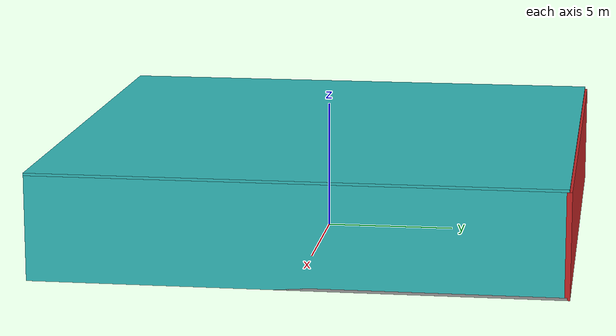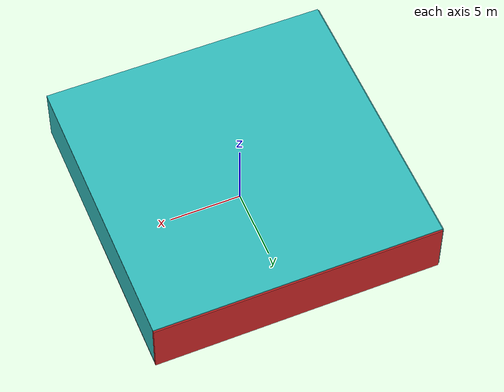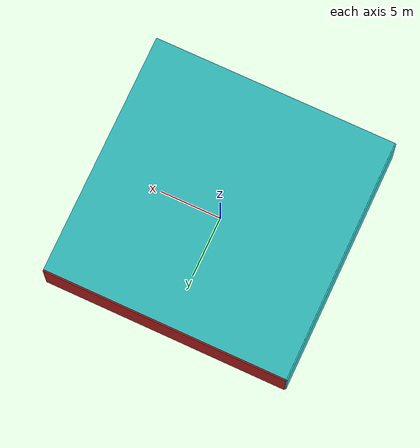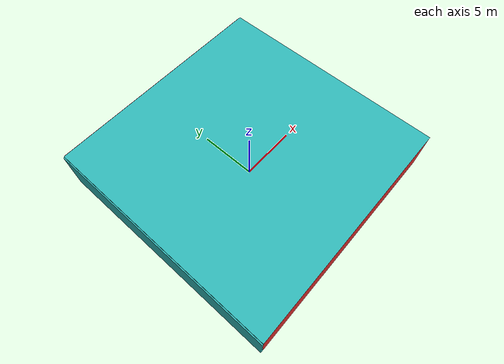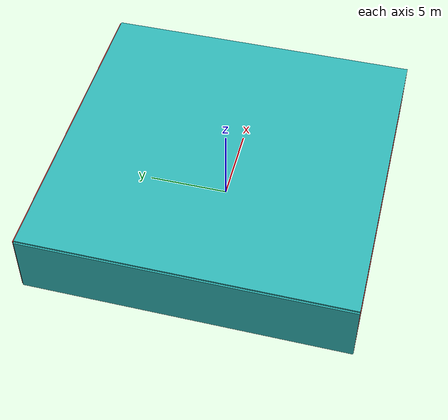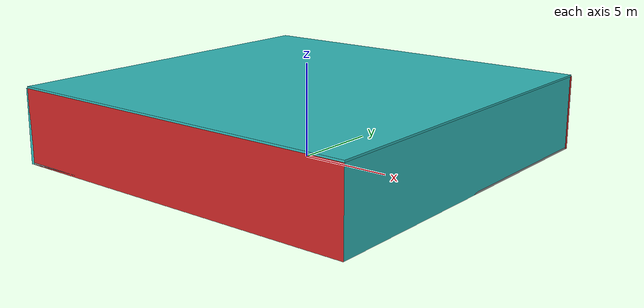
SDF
<sdf version="1.4">
 <world name="default">
  <physics type="ode">
   <max_step_size>0.001</max_step_size>
   <real_time_factor>1</real_time_factor>
   <real_time_update_rate>1000</real_time_update_rate>
   <gravity>0 0 -9.8</gravity>
  </physics>
  <scene><ambient>0.4 0.4 0.4 1</ambient><background>0.7 0.7 0.7 1</background><shadows>1</shadows></scene>
  <model name="Surrounding">
   <static>1</static>
   <link name="Ceiling">
    <collision name="Ceiling_Collision"><geometry><box><size>20 20 0.1</size></box></geometry></collision>
    <visual name="Ceiling_Visual">
     <geometry><box><size>20 20 0.1</size></box></geometry>
     <material>
      <script><uri>file://media/materials/scripts/gazebo.material</uri><name>Gazebo/Turquoise</name></script>
     </material>
    </visual>
    <pose>0 0 4.05 0 0 0</pose>
   </link>
   <link name="Wall_South">
    <collision name="Wall_South_Collision">
     <geometry><box><size>20 0 4</size></box></geometry>
     <pose>0 0 2 0 -0 0</pose>
    </collision>
    <visual name="Wall_South_Visual">
     <pose>0 0 2 0 -0 0</pose>
     <geometry><box><size>20 0 4</size></box></geometry>
     <material>
      <script><uri>file://media/materials/scripts/gazebo.material</uri><name>Gazebo/RedBright</name></script>
     </material>
    </visual>
    <velocity_decay><linear>0</linear><angular>0</angular></velocity_decay>
    <pose>0 -10 0 0 -0 0</pose>
   </link>
   <link name="Wall_East">
    <collision name="Wall_21_Collision">
     <geometry><box><size>20 0 4</size></box></geometry>
     <pose>0 0 2 0 -0 0</pose>
    </collision>
    <visual name="Wall_21_Visual">
     <pose>0 0 2 0 -0 0</pose>
     <geometry><box><size>20 0 4</size></box></geometry>
     <material>
      <script>
       <uri>file://media/materials/scripts/gazebo.material</uri>
       <name>Gazebo/TurquoiseGlowOutline</name>
      </script>
     </material>
    </visual>
    <velocity_decay><linear>0</linear><angular>0</angular></velocity_decay>
    <pose>10 0 0 0 -0 1.5708</pose>
   </link>
   <link name="Wall_North">
    <collision name="Wall_22_Collision">
     <geometry><box><size>20 0.2 4</size></box></geometry>
     <pose>0 0 2 0 -0 0</pose>
    </collision>
    <visual name="Wall_22_Visual">
     <pose>0 0 2 0 -0 0</pose>
     <geometry><box><size>20 0.2 4</size></box></geometry>
     <material>
      <script><uri>file://media/materials/scripts/gazebo.material</uri><name>Gazebo/RedGlow</name></script>
     </material>
    </visual>
    <velocity_decay><linear>0</linear><angular>0</angular></velocity_decay>
    <pose>0 10 0 0 -0 0</pose>
   </link>
   <link name="Wall_West">
    <collision name="Wall_23_Collision">
     <geometry><box><size>20 0.2 4</size></box></geometry>
     <pose>0 0 2 0 -0 0</pose>
    </collision>
    <visual name="Wall_23_Visual">
     <pose>0 0 2 0 -0 0</pose>
     <geometry><box><size>20 0.2 4</size></box></geometry>
     <material>
      <script><uri>file://media/materials/scripts/gazebo.material</uri><name>Gazebo/TurquoiseGlow</name></script>
     </material>
    </visual>
    <velocity_decay><linear>0</linear><angular>0</angular></velocity_decay>
    <pose>-10 0 0 0 0 -1.5708</pose>
   </link>
   <link name="Ground_link">
    <collision name="collision">
     <pose>0 0 .05 0 -0 0</pose>
     <geometry><box><size>20 20 0.1</size></box></geometry>
    </collision>
    <visual name="visual">
     <pose>0 0 .05 0 -0 0</pose>
     <geometry><box><size>20 20 0.1</size></box></geometry>
     <material>
      <script><uri>file://media/materials/scripts/gazebo.material</uri><name>Gazebo/Grey</name></script>
     </material>
    </visual>
   </link>
   <static>1</static>
  </model>
  <spherical_coordinates>
   <surface_model>EARTH_WGS84</surface_model>
   <latitude_deg>0</latitude_deg>
   <longitude_deg>0</longitude_deg>
   <elevation>0</elevation>
   <heading_deg>0</heading_deg>
  </spherical_coordinates>
  <light name="lightball_0" type="diffuse">
   <diffuse>0.8 0.8 0.8 1</diffuse>
   <specular>0.2 0.2 0.2 1</specular>
   <attenuation>
    <range>100</range>
    <constant>0.7</constant>
    <linear>0.01</linear>
    <quadratic>0.001</quadratic>
   </attenuation>
   <direction>-0.5 0.1 -0.9</direction>
   <pose>-5.88800094801 -8.14195118297 1.90195495712 0 0 0</pose>
  </light>
  <light name="lightball_1" type="diffuse">
   <diffuse>0.8 0.8 0.8 1</diffuse>
   <specular>0.2 0.2 0.2 1</specular>
   <attenuation>
    <range>100</range>
    <constant>0.7</constant>
    <linear>0.01</linear>
    <quadratic>0.001</quadratic>
   </attenuation>
   <direction>-0.5 0.1 -0.9</direction>
   <pose>-8.65584314881 -5.02834097824 1.67304846346 0 0 0</pose>
  </light>
  <light name="lightball_2" type="diffuse">
   <diffuse>0.8 0.8 0.8 1</diffuse>
   <specular>0.2 0.2 0.2 1</specular>
   <attenuation>
    <range>100</range>
    <constant>0.7</constant>
    <linear>0.01</linear>
    <quadratic>0.001</quadratic>
   </attenuation>
   <direction>-0.5 0.1 -0.9</direction>
   <pose>9.83852714297 -5.93605941044 1.32177190839 0 0 0</pose>
  </light>
  <light name="lightball_3" type="diffuse">
   <diffuse>0.8 0.8 0.8 1</diffuse>
   <specular>0.2 0.2 0.2 1</specular>
   <attenuation>
    <range>100</range>
    <constant>0.7</constant>
    <linear>0.01</linear>
    <quadratic>0.001</quadratic>
   </attenuation>
   <direction>-0.5 0.1 -0.9</direction>
   <pose>7.3923322052 0.0956958106104 2.06124287538 0 0 0</pose>
  </light>
  <light name="lightball_4" type="diffuse">
   <diffuse>0.8 0.8 0.8 1</diffuse>
   <specular>0.2 0.2 0.2 1</specular>
   <attenuation>
    <range>100</range>
    <constant>0.7</constant>
    <linear>0.01</linear>
    <quadratic>0.001</quadratic>
   </attenuation>
   <direction>-0.5 0.1 -0.9</direction>
   <pose>0.183007580067 -9.76321817497 0.774621974082 0 0 0</pose>
  </light>
  <light name="lightball_5" type="diffuse">
   <diffuse>0.8 0.8 0.8 1</diffuse>
   <specular>0.2 0.2 0.2 1</specular>
   <attenuation>
    <range>100</range>
    <constant>0.7</constant>
    <linear>0.01</linear>
    <quadratic>0.001</quadratic>
   </attenuation>
   <direction>-0.5 0.1 -0.9</direction>
   <pose>-0.714160706005 7.83704484447 1.06816757533 0 0 0</pose>
  </light>
  <light name="lightball_6" type="diffuse">
   <diffuse>0.8 0.8 0.8 1</diffuse>
   <specular>0.2 0.2 0.2 1</specular>
   <attenuation>
    <range>100</range>
    <constant>0.7</constant>
    <linear>0.01</linear>
    <quadratic>0.001</quadratic>
   </attenuation>
   <direction>-0.5 0.1 -0.9</direction>
   <pose>8.99836519118 -6.14881327257 2.69646659801 0 0 0</pose>
  </light>
  <include><uri>model://cabinet</uri><pose>-7.41894846943 1.72398869229 0 0 0 2.26173914398</pose></include>
  <include><uri>model://table</uri><pose>-4.93549402271 -1.46889470366 0 0 0 2.20567604886</pose></include>
  <include>
   <uri>model://robocup_3Dsim_goal</uri>
   <pose>-0.968098582553 -7.15018986287 0 0 0 2.22145413021</pose>
  </include>
  <include><uri>model://cabinet</uri><pose>-2.43557350942 2.37514357336 0 0 0 0.50507083261</pose></include>
  <include><uri>model://cabinet</uri><pose>-0.739850704591 6.30045449728 0 0 0 2.22379226979</pose></include>
 </world>
</sdf>

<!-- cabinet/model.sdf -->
<sdf version="1.5">
  <model name="cabinet">
    <static>true</static>
    <link name="cabinet_bottom_plate">
      <inertial>
        <pose>0 0 -1 0 0 0</pose>
        <inertia>
          <ixx>2.050000</ixx>
          <ixy>0</ixy>
          <ixz>0</ixz>
          <iyy>2.050000</iyy>
          <iyz>0</iyz>
          <izz>2.050000</izz>
        </inertia>
        <mass>25.000000</mass>
      </inertial>
      <collision name="cabinet_bottom_plate_geom">
        <pose>0 0 0.010000 0 0 0</pose>
        <geometry>
          <box>
            <size>0.450000 0.450000 0.020000</size>
          </box>
        </geometry>
      </collision>
      <visual name="cabinet_bottom_plate_geom_visual">
        <pose>0 0 0.010000 0 0 0</pose>
        <geometry>
          <box>
            <size>0.450000 0.450000 0.020000</size>
          </box>
        </geometry>
        <material>
          <script>
            <uri>model://media/materials/scripts/gazebo.material</uri>
            <name>Gazebo/Wood</name>
          </script>
        </material>
      </visual>
      <collision name="cabinet_bottom_plate_geom_cabinet_back_plate">
        <pose>0.235000 0 0.510000 0 0 0</pose>
        <geometry>
          <box>
            <size>0.020000 0.450000 1.020000</size>
          </box>
        </geometry>
      </collision>
      <visual name="cabinet_bottom_plate_geom_cabinet_back_plate_visual">
        <pose>0.235000 0 0.510000 0 0 0</pose>
        <geometry>
          <box>
            <size>0.020000 0.450000 1.020000</size>
          </box>
        </geometry>
        <material>
          <script>
            <uri>model://media/materials/scripts/gazebo.material</uri>
            <name>Gazebo/Wood</name>
          </script>
        </material>
      </visual>
      <collision name="cabinet_bottom_plate_geom_cabinet_left_plate">
        <pose>0 0.235000 0.510000 0 0 0</pose>
        <geometry>
          <box>
            <size>0.450000 0.020000 1.020000</size>
          </box>
        </geometry>
      </collision>
      <visual name="cabinet_bottom_plate_geom_cabinet_left_plate_visual">
        <pose>0 0.235000 0.510000 0 0 0</pose>
        <geometry>
          <box>
            <size>0.450000 0.020000 1.020000</size>
          </box>
        </geometry>
        <material>
          <script>
            <uri>model://media/materials/scripts/gazebo.material</uri>
            <name>Gazebo/Wood</name>
          </script>
        </material>
      </visual>
      <collision name="cabinet_bottom_plate_geom_cabinet_middle_plate">
        <pose>0 0 0.510000 0 0 0</pose>
        <geometry>
          <box>
            <size>0.450000 0.450000 0.020000</size>
          </box>
        </geometry>
      </collision>
      <visual name="cabinet_bottom_plate_geom_cabinet_middle_plate_visual">
        <pose>0 0 0.510000 0 0 0</pose>
        <geometry>
          <box>
            <size>0.450000 0.450000 0.020000</size>
          </box>
        </geometry>
        <material>
          <script>
            <uri>model://media/materials/scripts/gazebo.material</uri>
            <name>Gazebo/Wood</name>
          </script>
        </material>
      </visual>
      <collision name="cabinet_bottom_plate_geom_cabinet_right_plate">
        <pose>0 -0.235000 0.510000 0 0 0</pose>
        <geometry>
          <box>
            <size>0.450000 0.020000 1.020000</size>
          </box>
        </geometry>
      </collision>
      <visual name="cabinet_bottom_plate_geom_cabinet_right_plate_visual">
        <pose>0 -0.235000 0.510000 0 0 0</pose>
        <geometry>
          <box>
            <size>0.450000 0.020000 1.020000</size>
          </box>
        </geometry>
        <material>
          <script>
            <uri>model://media/materials/scripts/gazebo.material</uri>
            <name>Gazebo/Wood</name>
          </script>
        </material>
      </visual>
      <collision name="cabinet_bottom_plate_geom_cabinet_top_plate">
        <pose>0 0 1.010000 0 0 0</pose>
        <geometry>
          <box>
            <size>0.450000 0.450000 0.020000</size>
          </box>
        </geometry>
      </collision>
      <visual name="cabinet_bottom_plate_geom_cabinet_top_plate_visual">
        <pose>0 0 1.010000 0 0 0</pose>
        <geometry>
          <box>
            <size>0.450000 0.450000 0.020000</size>
          </box>
        </geometry>
        <material>
          <script>
            <uri>model://media/materials/scripts/gazebo.material</uri>
            <name>Gazebo/Wood</name>
          </script>
        </material>
      </visual>
    </link>
  </model>
</sdf>

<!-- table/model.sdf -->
<sdf version="1.5">
  <model name="table">
    <static>true</static>
    <link name="link">
      <collision name="surface">
        <pose>0 0 1.0 0 0 0</pose>
        <geometry>
          <box>
            <size>1.5 0.8 0.03</size>
          </box>
        </geometry>
        <surface>
          <friction>
            <ode>
              <mu>0.6</mu>
              <mu2>0.6</mu2>
            </ode>
          </friction>
        </surface>
      </collision>
      <visual name="visual1">
        <pose>0 0 1.0 0 0 0</pose>
        <geometry>
          <box>
            <size>1.5 0.8 0.03</size>
          </box>
        </geometry>
        <material>
          <script>
            <uri>model://media/materials/scripts/gazebo.material</uri>
            <name>Gazebo/Wood</name>
          </script>
        </material>
      </visual>
      <collision name="front_left_leg">
        <pose>0.68 0.38 0.5 0 0 0</pose>
        <geometry>
          <cylinder>
            <radius>0.02</radius>
            <length>1.0</length>
          </cylinder>
        </geometry>
      </collision>
      <visual name="front_left_leg">
        <pose>0.68 0.38 0.5 0 0 0</pose>
        <geometry>
          <cylinder>
            <radius>0.02</radius>
            <length>1.0</length>
          </cylinder>
        </geometry>
        <material>
          <script>
            <uri>model://media/materials/scripts/gazebo.material</uri>
            <name>Gazebo/Grey</name>
          </script>
        </material>
      </visual>
      <collision name="front_right_leg">
        <pose>0.68 -0.38 0.5 0 0 0</pose>
        <geometry>
          <cylinder>
            <radius>0.02</radius>
            <length>1.0</length>
          </cylinder>
        </geometry>
      </collision>
      <visual name="front_right_leg">
        <pose>0.68 -0.38 0.5 0 0 0</pose>
        <geometry>
          <cylinder>
            <radius>0.02</radius>
            <length>1.0</length>
          </cylinder>
        </geometry>
        <material>
          <script>
            <uri>model://media/materials/scripts/gazebo.material</uri>
            <name>Gazebo/Grey</name>
          </script>
        </material>
      </visual>
      <collision name="back_right_leg">
        <pose>-0.68 -0.38 0.5 0 0 0</pose>
        <geometry>
          <cylinder>
            <radius>0.02</radius>
            <length>1.0</length>
          </cylinder>
        </geometry>
      </collision>
      <visual name="back_right_leg">
        <pose>-0.68 -0.38 0.5 0 0 0</pose>
        <geometry>
          <cylinder>
            <radius>0.02</radius>
            <length>1.0</length>
          </cylinder>
        </geometry>
        <material>
          <script>
            <uri>model://media/materials/scripts/gazebo.material</uri>
            <name>Gazebo/Grey</name>
          </script>
        </material>
      </visual>
      <collision name="back_left_leg">
        <pose>-0.68 0.38 0.5 0 0 0</pose>
        <geometry>
          <cylinder>
            <radius>0.02</radius>
            <length>1.0</length>
          </cylinder>
        </geometry>
      </collision>
      <visual name="back_left_leg">
        <pose>-0.68 0.38 0.5 0 0 0</pose>
        <geometry>
          <cylinder>
            <radius>0.02</radius>
            <length>1.0</length>
          </cylinder>
        </geometry>
        <material>
          <script>
            <uri>model://media/materials/scripts/gazebo.material</uri>
            <name>Gazebo/Grey</name>
          </script>
        </material>
      </visual>
    </link>
  </model>
</sdf>

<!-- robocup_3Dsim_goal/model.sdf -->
<sdf version="1.5">
  <model name="robocup_3d_goal">
    <static>true</static>
    <link name="left_post">
      <pose>0 1.05 0.45 0 0 0</pose>
      <collision name="collision">
        <geometry>
          <cylinder>
            <radius>0.05</radius>
            <length>0.9</length>
          </cylinder>
        </geometry>
      </collision>
      <visual name="visual">
        <geometry>
          <cylinder>
            <radius>0.05</radius>
            <length>0.9</length>
          </cylinder>
        </geometry>
        <material>
          <script>
            <uri>file://media/materials/scripts/gazebo.material</uri>
            <name>Gazebo/ZincYellow</name>
          </script>
        </material>
      </visual>
    </link>
    <link name="left_support_horiz_lower">
      <pose>0.30 1.05 0.01 0 0 0</pose>
      <collision name="collision">
        <geometry>
          <box>
            <size>0.50 0.02 0.02</size>
          </box>
        </geometry>
      </collision>
      <visual name="visual">
        <geometry>
          <box>
            <size>0.50 0.02 0.02</size>
          </box>
        </geometry>
        <material>
          <script>
            <uri>file://media/materials/scripts/gazebo.material</uri>
            <name>Gazebo/White</name>
          </script>
        </material>
      </visual>
    </link>
    <link name="left_support_horiz_upper">
      <pose>0.30 1.05 0.79 0 0 0</pose>
      <collision name="collision">
        <geometry>
          <box>
            <size>0.50 0.02 0.02</size>
          </box>
        </geometry>
      </collision>
      <visual name="visual">
        <geometry>
          <box>
            <size>0.50 0.02 0.02</size>
          </box>
        </geometry>
        <material>
          <script>
            <uri>file://media/materials/scripts/gazebo.material</uri>
            <name>Gazebo/White</name>
          </script>
        </material>
      </visual>
    </link>
    <link name="left_support_vertical">
      <pose>0.56 1.05 0.4 0 1.5708 0</pose>
      <collision name="collision">
        <geometry>
          <box>
            <size>0.80 0.02 0.02</size>
          </box>
        </geometry>
      </collision>
      <visual name="visual">
        <geometry>
          <box>
            <size>0.80 0.02 0.02</size>
          </box>
        </geometry>
        <material>
          <script>
            <uri>file://media/materials/scripts/gazebo.material</uri>
            <name>Gazebo/White</name>
          </script>
        </material>
      </visual>
    </link>
    <link name="right_support_horiz_lower">
      <pose>0.30 -1.05 0.01 0 0 0</pose>
      <collision name="collision">
        <geometry>
          <box>
            <size>0.50 0.02 0.02</size>
          </box>
        </geometry>
      </collision>
      <visual name="visual">
        <geometry>
          <box>
            <size>0.50 0.02 0.02</size>
          </box>
        </geometry>
        <material>
          <script>
            <uri>file://media/materials/scripts/gazebo.material</uri>
            <name>Gazebo/White</name>
          </script>
        </material>
      </visual>
    </link>
    <link name="right_support_horiz_upper">
      <pose>0.30 -1.05 0.79 0 0 0</pose>
      <collision name="collision">
        <geometry>
          <box>
            <size>0.50 0.02 0.02</size>
          </box>
        </geometry>
      </collision>
      <visual name="visual">
        <geometry>
          <box>
            <size>0.50 0.02 0.02</size>
          </box>
        </geometry>
        <material>
          <script>
            <uri>file://media/materials/scripts/gazebo.material</uri>
            <name>Gazebo/White</name>
          </script>
        </material>
      </visual>
    </link>
    <link name="right_support_vertical">
      <pose>0.56 -1.05 0.4 0 1.5708 0</pose>
      <collision name="collision">
        <geometry>
          <box>
            <size>0.80 0.02 0.02</size>
          </box>
        </geometry>
      </collision>
      <visual name="visual">
        <geometry>
          <box>
            <size>0.80 0.02 0.02</size>
          </box>
        </geometry>
        <material>
          <script>
            <uri>file://media/materials/scripts/gazebo.material</uri>
            <name>Gazebo/White</name>
          </script>
        </material>
      </visual>
    </link>
    <link name="center_support_horiz_lower">
      <pose>0.56 0 0.01 0 1.5708 0</pose>
      <collision name="collision">
        <geometry>
          <box>
            <size>0.02 2.08 0.02</size>
          </box>
        </geometry>
      </collision>
      <visual name="visual">
        <geometry>
          <box>
            <size>0.02 2.08 0.02</size>
          </box>
        </geometry>
        <material>
          <script>
            <uri>file://media/materials/scripts/gazebo.material</uri>
            <name>Gazebo/White</name>
          </script>
        </material>
      </visual>
    </link>
    <link name="center_support_horiz_upper">
      <pose>0.56 0 0.79 0 1.5708 0</pose>
      <collision name="collision">
        <geometry>
          <box>
            <size>0.02 2.08 0.02</size>
          </box>
        </geometry>
      </collision>
      <visual name="visual">
        <geometry>
          <box>
            <size>0.02 2.08 0.02</size>
          </box>
        </geometry>
        <material>
          <script>
            <uri>file://media/materials/scripts/gazebo.material</uri>
            <name>Gazebo/White</name>
          </script>
        </material>
      </visual>
    </link>
    <link name="right_post">
      <pose>0 -1.05 0.45 0 0 0</pose>
      <collision name="collision">
        <geometry>
          <cylinder>
            <radius>0.05</radius>
            <length>0.9</length>
          </cylinder>
        </geometry>
      </collision>
      <visual name="visual">
        <geometry>
          <cylinder>
            <radius>0.05</radius>
            <length>0.9</length>
          </cylinder>
        </geometry>
        <material>
          <script>
            <uri>file://media/materials/scripts/gazebo.material</uri>
            <name>Gazebo/ZincYellow</name>
          </script>
        </material>
      </visual>
    </link>
    <link name="crossbar">
      <pose>0 0 0.85 1.57 1.57 0</pose>
      <collision name="collision">
        <geometry>
          <cylinder>
            <radius>0.05</radius>
            <length>2.0</length>
          </cylinder>
        </geometry>
      </collision>
      <visual name="visual">
        <geometry>
          <cylinder>
            <radius>0.05</radius>
            <length>2.0</length>
          </cylinder>
        </geometry>
        <material>
          <script>
            <uri>file://media/materials/scripts/gazebo.material</uri>
            <name>Gazebo/ZincYellow</name>
          </script>
        </material>
      </visual>
    </link>
    <link name="center_net">
      <pose>0.56 0 0.40 0 0 0</pose>
      <collision name="collision">
        <geometry>
          <box>
            <size>0.01 2.1 0.80</size>
          </box>
        </geometry>
      </collision>
      <visual name="visual">
        <geometry>
          <box>
            <size>0.01 2.1 0.80</size>
          </box>
        </geometry>
        <material>
          <script>
            <uri>model://../model_source/models/robocup09_spl_field/materials/scripts/</uri>
            <uri>model://../model_source/models/robocup09_spl_field/materials/textures/</uri>
            <name>RoboCup/Net</name>
          </script>
        </material>
      </visual>
    </link>
    <link name="left_net">
      <pose>0.30 1.05 0.40 0 0 0</pose>
      <collision name="collision">
        <geometry>
          <box>
            <size>0.50 0.01 0.76</size>
          </box>
        </geometry>
      </collision>
      <visual name="visual">
        <geometry>
          <box>
            <size>0.50 0.01 0.76</size>
          </box>
        </geometry>
        <material>
          <script>
            <uri>model://../model_source/models/robocup09_spl_field/materials/scripts/</uri>
            <uri>model://../model_source/models/robocup09_spl_field/materials/textures/</uri>
            <name>RoboCup/Net</name>
          </script>
        </material>
      </visual>
    </link>
    <link name="right_net">
      <pose>0.30 -1.05 0.40 0 0 0</pose>
      <collision name="collision">
        <geometry>
          <box>
            <size>0.50 0.01 0.76</size>
          </box>
        </geometry>
      </collision>
      <visual name="visual">
        <geometry>
          <box>
            <size>0.50 0.01 0.76</size>
          </box>
        </geometry>
        <material>
          <script>
            <uri>model://../model_source/models/robocup09_spl_field/materials/scripts/</uri>
            <uri>model://../model_source/models/robocup09_spl_field/materials/textures/</uri>
            <name>RoboCup/Net</name>
          </script>
        </material>
      </visual>
    </link>
  </model>
</sdf>
